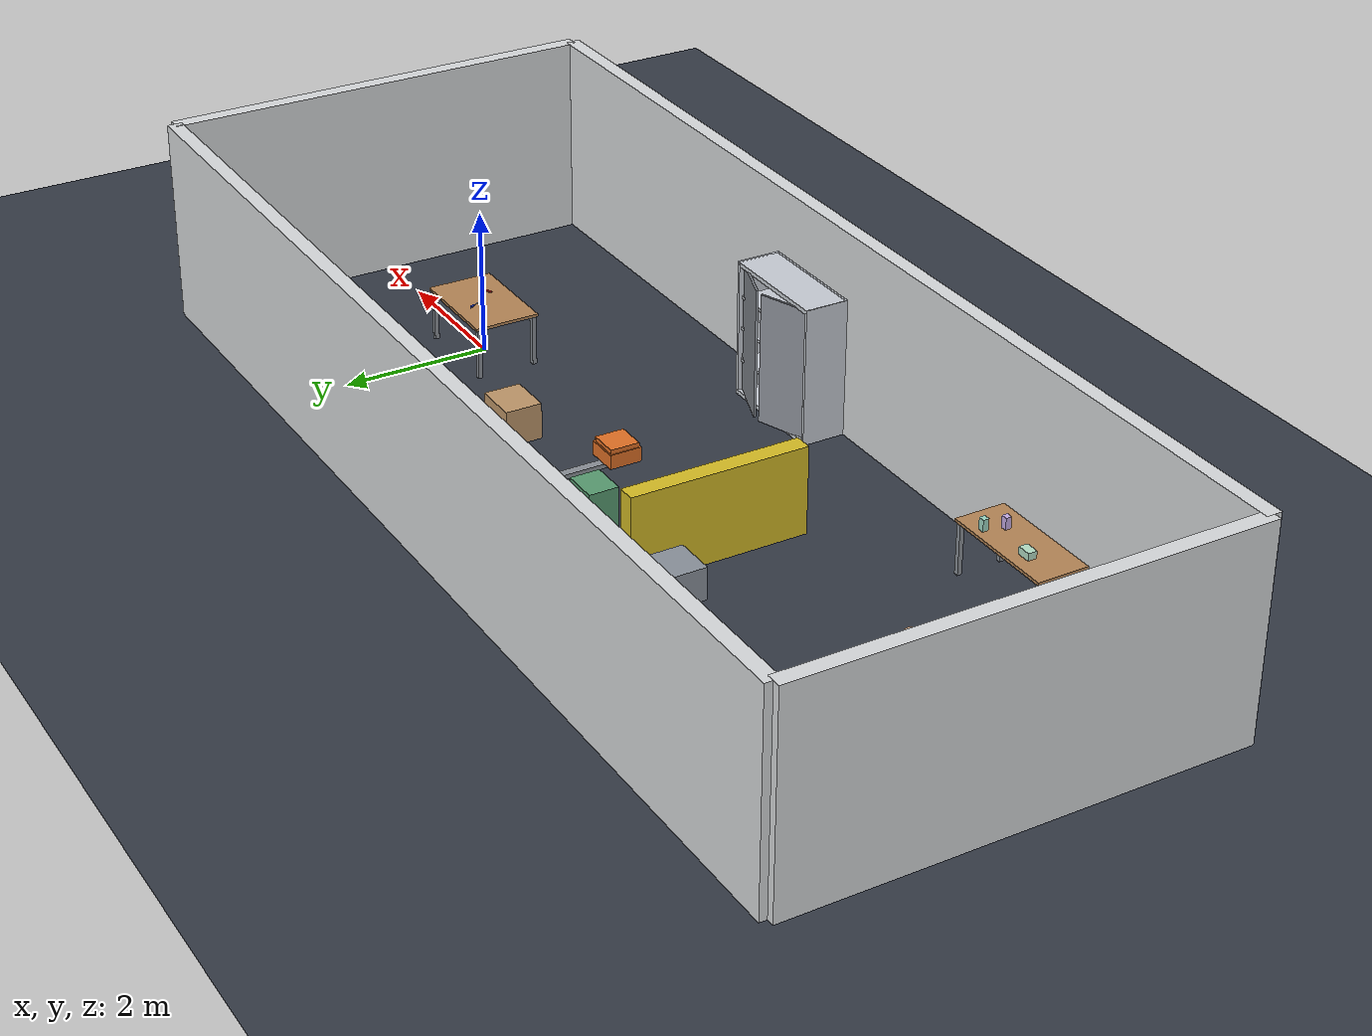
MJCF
<mujoco model="lab_scene">
  <option timestep="0.004" integrator="implicitfast"/>
  <compiler angle="radian"/>

  <visual>
    <global offwidth="1920" offheight="1080" elevation="-22" azimuth="135"/>
    <rgba haze="0.14 0.16 0.20 1"/>
    <map force="0.1" zfar="40"/>
    <quality shadowsize="4096"/>
  </visual>

  <statistic center="-4.5 0 0.7" extent="13"/>

  <asset>
    <texture type="skybox" builtin="gradient" rgb1=".25 .3 .38" rgb2="0 0 0" width="32" height="512"/>
    <texture name="grid" type="2d" builtin="checker" width="512" height="512"
             rgb1=".18 .20 .24" rgb2=".24 .27 .32"/>
    <material name="grid" texture="grid" texrepeat="8 8" texuniform="true" reflectance=".15"/>
    <material name="wood"   rgba="0.72 0.53 0.34 1" reflectance="0.05"/>
    <material name="metal"  rgba="0.55 0.57 0.60 1" reflectance="0.35"/>
    <material name="shelf"  rgba="0.80 0.82 0.85 1" reflectance="0.1"/>
    <material name="belt"   rgba="0.20 0.20 0.22 1" reflectance="0.05"/>
    <material name="wall"   rgba="0.86 0.87 0.88 1" reflectance="0.04"/>
    <material name="worker" rgba="0.90 0.55 0.15 1"/>
    <material name="skin"   rgba="0.85 0.68 0.55 1"/>
    <material name="table_mat" rgba="0.55 0.42 0.28 1" reflectance="0.05"/>
    <texture name="board_tex" type="2d" file="assets/calib_board.png"/>
    <material name="board_mat" texture="board_tex" texrepeat="1 1" texuniform="false"/>
  </asset>

  <default>
    <geom condim="3" friction="0.9 0.05 0.005" solref="0.008 1"/>
  </default>

  <worldbody>
    <geom name="floor" type="plane" size="0 0 0.05" material="grid" condim="3"/>
    <light name="top1" pos="-3 0 3.5" dir="0 0 -1" diffuse="0.6 0.6 0.6"/>
    <light name="top2" pos="-8 0 3.5" dir="0 0 -1" diffuse="0.6 0.6 0.6"/>
    <light name="side" pos="-4 -3 3" dir="0.3 1 -1.2" diffuse="0.4 0.4 0.4"/>
    <camera name="overview" pos="-4.5 -11 10.5" xyaxes="1 0 0 0 0.68 0.73"/>
    <camera name="top" pos="-4.5 0 12" xyaxes="1 0 0 0 1 0"/>

    <geom name="wall_S" type="box" pos="-4.5 -3.0 1.4" size="7.5 0.1 1.4" material="wall"/>
    <geom name="wall_N" type="box" pos="-4.5 3.0 1.4" size="7.5 0.1 1.4" material="wall"/>
    <geom name="wall_W" type="box" pos="-12.0 0.0 1.4" size="0.1 3.0 1.4" material="wall"/>
    <geom name="wall_E" type="box" pos="3.0 0.0 1.4" size="0.1 3.0 1.4" material="wall"/>

    <!-- ================= 静态家具 ================= -->
    <body name="bench_main" pos="0.0 0.0 0" euler="0 0 0.0">
      <geom name="bench_main_top" type="box" pos="0 0 0.72" size="0.7 0.45 0.02" material="wood"/>
      <geom name="bench_main_l1" type="box" pos=" 0.6499999999999999  0.4 0.35" size="0.03 0.03 0.35" material="metal"/>
      <geom name="bench_main_l2" type="box" pos=" 0.6499999999999999 -0.4 0.35" size="0.03 0.03 0.35" material="metal"/>
      <geom name="bench_main_l3" type="box" pos="-0.6499999999999999  0.4 0.35" size="0.03 0.03 0.35" material="metal"/>
      <geom name="bench_main_l4" type="box" pos="-0.6499999999999999 -0.4 0.35" size="0.03 0.03 0.35" material="metal"/>
    </body>
    <body name="bench_S1" pos="-8.5 -2.55 0" euler="0 0 0.0">
      <geom name="bench_S1_top" type="box" pos="0 0 0.72" size="0.8 0.35 0.02" material="wood"/>
      <geom name="bench_S1_l1" type="box" pos=" 0.75  0.3 0.35" size="0.03 0.03 0.35" material="metal"/>
      <geom name="bench_S1_l2" type="box" pos=" 0.75 -0.3 0.35" size="0.03 0.03 0.35" material="metal"/>
      <geom name="bench_S1_l3" type="box" pos="-0.75  0.3 0.35" size="0.03 0.03 0.35" material="metal"/>
      <geom name="bench_S1_l4" type="box" pos="-0.75 -0.3 0.35" size="0.03 0.03 0.35" material="metal"/>
    </body>
    <body name="shelf_W" pos="-11.4 1.4 0" euler="0 0 0.0">
      <geom type="box" pos="0.42 0.19 0.8" size="0.02 0.02 0.8" material="metal"/>
      <geom type="box" pos="0.42 -0.19 0.8" size="0.02 0.02 0.8" material="metal"/>
      <geom type="box" pos="-0.42 0.19 0.8" size="0.02 0.02 0.8" material="metal"/>
      <geom type="box" pos="-0.42 -0.19 0.8" size="0.02 0.02 0.8" material="metal"/>
      <geom type="box" pos="0 0 0.05" size="0.45 0.22 0.015" material="shelf"/>
      <geom type="box" pos="0 0 0.8" size="0.45 0.22 0.015" material="shelf"/>
      <geom type="box" pos="0 0 1.55" size="0.45 0.22 0.015" material="shelf"/>
    </body>
    <!-- 东北墙角高台（桌面 1.0 m，迁自 model/camera 的标定桌）+ 棋盘格标定板 -->
    <body name="corner_table" pos="2.25 2.35 0">
      <geom name="corner_table_top" type="box" pos="0 0 0.98" size="0.45 0.35 0.02" material="table_mat"/>
      <geom name="corner_table_leg_-1_-1" type="box" pos="-0.4 -0.3 0.48" size="0.03 0.03 0.48" material="table_mat"/>
      <geom name="corner_table_leg_-1_1" type="box" pos="-0.4 0.3 0.48" size="0.03 0.03 0.48" material="table_mat"/>
      <geom name="corner_table_leg_1_-1" type="box" pos="0.4 -0.3 0.48" size="0.03 0.03 0.48" material="table_mat"/>
      <geom name="corner_table_leg_1_1" type="box" pos="0.4 0.3 0.48" size="0.03 0.03 0.48" material="table_mat"/>
      <geom name="calib_board" type="box" pos="0 0 1.004" size="0.15 0.15 0.004" material="board_mat" contype="0" conaffinity="0"/>
    </body>

    <!-- ================= 台面小道具 ================= -->
    <geom name="prop_0" type="box" pos="-8.165 -2.587 0.82" size="0.04 0.04 0.08" rgba="0.79 0.69 0.92 1"/>
    <geom name="prop_1" type="box" pos="-8.071 -2.335 0.82" size="0.04 0.04 0.08" rgba="0.63 0.86 0.78 1"/>
    <geom name="prop_2" type="box" pos="-8.784 -2.432 0.79" size="0.09 0.06 0.05" rgba="0.72 0.89 0.79 1"/>

    <!-- ================= 静态障碍物（走廊里） ================= -->
    <body name="crate_1" pos="-2.2 0.7 0.25">
      <geom type="box" size="0.3 0.25 0.25" rgba="0.76 0.60 0.42 1"/>
    </body>
    <body name="crate_2" pos="-6.5 0.85 0.22">
      <geom type="box" size="0.28 0.28 0.22" rgba="0.55 0.58 0.62 1"/>
    </body>
    <body name="crate_3" pos="-4.7 0.9 0.3">
      <geom type="box" size="0.24 0.2 0.3" rgba="0.35 0.62 0.45 1"/>
    </body>

    <!-- ================= 螺丝刀（主工作台上） ================= -->
    <body name="screwdriver_red" pos="0.18 -0.18 0.756" euler="0 0 0.4">
      <freejoint/>
      <geom name="screwdriver_red_handle" type="cylinder" fromto="-0.045 0 0 0.03 0 0"
            size="0.014" rgba="0.85 0.15 0.15 1" condim="6" friction="1 0.02 0.02"/>
      <geom name="screwdriver_red_shaft" type="cylinder" fromto="0.03 0 0 0.115 0 0"
            size="0.004" rgba="0.75 0.75 0.78 1" condim="6" friction="1 0.02 0.02"/>
    </body>
    <body name="screwdriver_blue" pos="-0.1 0.2 0.756" euler="0 0 -1.1">
      <freejoint/>
      <geom name="screwdriver_blue_handle" type="cylinder" fromto="-0.045 0 0 0.03 0 0"
            size="0.014" rgba="0.15 0.25 0.85 1" condim="6" friction="1 0.02 0.02"/>
      <geom name="screwdriver_blue_shaft" type="cylinder" fromto="0.03 0 0 0.115 0 0"
            size="0.004" rgba="0.75 0.75 0.78 1" condim="6" friction="1 0.02 0.02"/>
    </body>

    <!-- ================= 工人（静态站姿，面朝主工作台） ================= -->
    <body name="worker" pos="-10.0 0 0">
      <geom name="w_leg_l" type="capsule" fromto="0  0.11 0.04 0  0.11 0.46" size="0.085" material="worker"/>
      <geom name="w_leg_r" type="capsule" fromto="0 -0.11 0.04 0 -0.11 0.46" size="0.085" material="worker"/>
      <geom name="w_torso" type="capsule" fromto="0 0 0.46 0 0 0.98" size="0.14" material="worker"/>
      <geom name="w_head"  type="sphere"  pos="0 0 1.15" size="0.11" material="skin"/>
      <geom name="w_arm_l" type="capsule" fromto="0 0.17 0.92 0.02 0.20 0.55" size="0.05" material="worker"/>
      <geom name="w_arm_r" type="capsule" fromto="0 -0.17 0.92 0.02 -0.20 0.55" size="0.05" material="worker"/>
      <geom name="w_hand_l" type="sphere" pos="0.02 0.20 0.50" size="0.045" material="skin"/>
      <geom name="w_hand_r" type="sphere" pos="0.02 -0.20 0.50" size="0.045" material="skin"/>
    </body>

    <!-- ================= 规则运动的物体（弹簧/重力驱动，无衰减往复） ================= -->
    <!-- 导轨（静态） -->
    <body name="shuttle_a_rail" pos="-3.5 1.25 0.03">
      <geom type="box" size="0.06 1.35 0.03" material="metal"/>
    </body>
    <!-- 料车（沿 y 往复，扫过整根导轨） -->
    <!-- 导轨中心 y=1.25、半长1.35（覆盖 -0.1~2.6），料车半宽0.22 -->
    <!-- 起点 y=-0.08(qpos=0)，springref=1.33 使平衡点在中心1.25，无阻尼等幅往复于 -0.08↔2.58，边缘正好扫到两端 -->
    <body name="shuttle_a" pos="-3.5 -0.08 0.16">
      <joint name="shuttle_a_j" type="slide" axis="0 1 0" damping="0"
             stiffness="22.0" springref="1.33"/>
      <geom type="box" size="0.22 0.22 0.10" rgba="0.90 0.45 0.15 1" mass="6.0"/>
      <geom type="box" pos="0 0 0.13" size="0.20 0.20 0.03" rgba="0.90 0.45 0.15 1" mass="0.3"/>
    </body>
    <!-- 柜子（静态，贴南墙，双开门 + 三层挡板） -->
    <!-- 柜宽 1.6(半0.8) 深 0.6(半0.3) 高 1.9；背面贴南墙内表面 y=-2.9 -->
    <body name="cabinet" pos="-3.5 -2.6 0" euler="0 0 0">
      <!-- 柜体外壳 -->
      <geom type="box" pos="0 0 0.03"   size="0.8 0.3 0.03" material="shelf"/>  <!-- 底板 -->
      <geom type="box" pos="0 0 1.87"   size="0.8 0.3 0.03" material="shelf"/>  <!-- 顶板 -->
      <geom type="box" pos="0 -0.29 0.95" size="0.8 0.02 0.95" material="shelf"/> <!-- 背板 -->
      <geom type="box" pos="0.79 0 0.95"  size="0.02 0.3 0.95" material="shelf"/> <!-- 右侧板 -->
      <geom type="box" pos="-0.79 0 0.95" size="0.02 0.3 0.95" material="shelf"/> <!-- 左侧板 -->
      <!-- 三层内部挡板 -->
      <geom type="box" pos="0 -0.02 0.50" size="0.78 0.28 0.02" material="shelf"/>
      <geom type="box" pos="0 -0.02 0.95" size="0.78 0.28 0.02" material="shelf"/>
      <geom type="box" pos="0 -0.02 1.40" size="0.78 0.28 0.02" material="shelf"/>
      <!-- 双开柜门（微开，朝走廊方向 +y 打开） -->
      <body name="cabinet_door_l" pos="-0.79 0.29 0.95">
        <geom type="box" pos="0.38 0.06 0" size="0.38 0.015 0.9"
              euler="0 0 0.35" material="metal"/>
      </body>
      <body name="cabinet_door_r" pos="0.79 0.29 0.95">
        <geom type="box" pos="-0.38 0.06 0" size="0.38 0.015 0.9"
              euler="0 0 -0.35" material="metal"/>
      </body>
    </body>
    <!-- 宽障碍物（静态挡板） -->
    <body name="barrier_1" pos="-6.0 0.0 0.6">
      <geom type="box" size="0.12 1.2 0.6" rgba="0.85 0.75 0.15 1"/>
    </body>
  </worldbody>

  <!-- 每个运动部件与其自身静态支架不参与碰撞（支架只是结构，不是障碍物） -->
  <contact>
    <exclude body1="shuttle_a" body2="shuttle_a_rail"/>
  </contact>
</mujoco>
